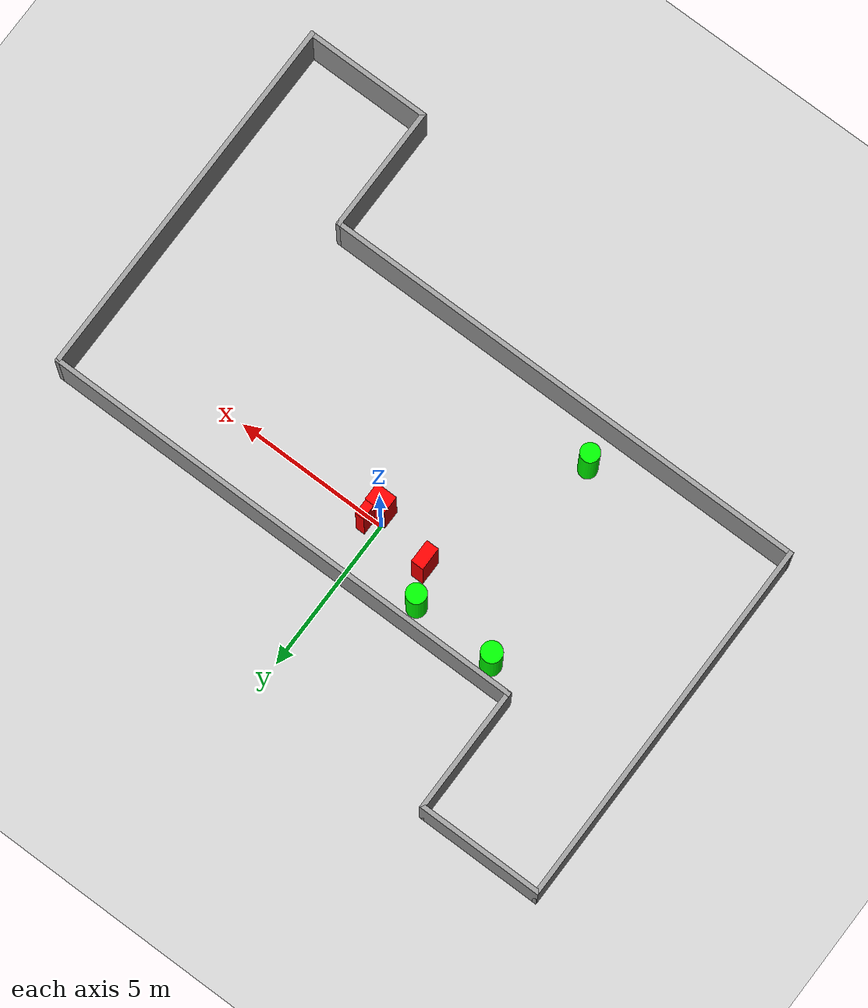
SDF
<sdf version="1.7">
 <world name="default">
  <light name="sun" type="directional">
   <pose>0 0 10 0 -0 0</pose>
   <diffuse>0.8 0.8 0.8 1</diffuse>
   <specular>0.2 0.2 0.2 1</specular>
   <attenuation>
    <range>1000</range>
    <constant>0.9</constant>
    <linear>0.01</linear>
    <quadratic>0.001</quadratic>
   </attenuation>
   <direction>-0.5 0.1 -0.9</direction>
   <spot><inner_angle>0</inner_angle><outer_angle>0</outer_angle><falloff>0</falloff></spot>
  </light>
  <model name="ground_plane">
   <static>1</static>
   <link name="link">
    <collision name="collision">
     <geometry><plane><normal>0 0 1</normal><size>100 100</size></plane></geometry>
     <surface>
      <contact><collide_bitmask>65535</collide_bitmask></contact>
      <friction><ode><mu>100</mu><mu2>50</mu2></ode></friction>
     </surface>
    </collision>
    <visual name="visual">
     <cast_shadows>0</cast_shadows>
     <geometry><plane><normal>0 0 1</normal><size>100 100</size></plane></geometry>
     <material>
      <script><uri>file://media/materials/scripts/gazebo.material</uri><name>Gazebo/Grey</name></script>
     </material>
    </visual>
   </link>
  </model>
  <gravity>0 0 -9.8</gravity>
  <magnetic_field>6e-06 2.3e-05 -4.2e-05</magnetic_field>
  <atmosphere type="adiabatic"/>
  <physics type="ode">
   <max_step_size>0.001</max_step_size>
   <real_time_factor>1</real_time_factor>
   <real_time_update_rate>1000</real_time_update_rate>
  </physics>
  <scene><ambient>0.4 0.4 0.4 1</ambient><background>0.7 0.7 0.7 1</background><shadows>1</shadows></scene>
  <spherical_coordinates>
   <surface_model>EARTH_WGS84</surface_model>
   <latitude_deg>0</latitude_deg>
   <longitude_deg>0</longitude_deg>
   <elevation>0</elevation>
   <heading_deg>0</heading_deg>
  </spherical_coordinates>
  <model name="my_base_walls">
   <link name="Wall_13">
    <collision name="Wall_13_Collision">
     <geometry><box><size>12.15 0.15 2.5</size></box></geometry>
     <pose>0 0 1.25 0 -0 0</pose>
    </collision>
    <visual name="Wall_13_Visual">
     <pose>0 0 1.25 0 -0 0</pose>
     <geometry><box><size>12.15 0.15 2.5</size></box></geometry>
     <material>
      <script><uri>file://media/materials/scripts/gazebo.material</uri><name>Gazebo/Grey</name></script>
      <ambient>1 1 1 1</ambient>
     </material>
     <meta><layer>0</layer></meta>
    </visual>
    <pose>10 -2 0 0 -0 1.5708</pose>
   </link>
   <link name="Wall_15">
    <collision name="Wall_15_Collision">
     <geometry><box><size>16.15 0.15 2.5</size></box></geometry>
     <pose>0 0 1.25 0 -0 0</pose>
    </collision>
    <visual name="Wall_15_Visual">
     <pose>0 0 1.25 0 -0 0</pose>
     <geometry><box><size>16.15 0.15 2.5</size></box></geometry>
     <material>
      <script><uri>file://media/materials/scripts/gazebo.material</uri><name>Gazebo/Grey</name></script>
      <ambient>1 1 1 1</ambient>
     </material>
     <meta><layer>0</layer></meta>
    </visual>
    <pose>2 4 0 0 -0 3.14159</pose>
   </link>
   <link name="Wall_17">
    <collision name="Wall_17_Collision">
     <geometry><box><size>4.15 0.15 2.5</size></box></geometry>
     <pose>0 0 1.25 0 -0 0</pose>
    </collision>
    <visual name="Wall_17_Visual">
     <pose>0 0 1.25 0 -0 0</pose>
     <geometry><box><size>4.15 0.15 2.5</size></box></geometry>
     <material>
      <script><uri>file://media/materials/scripts/gazebo.material</uri><name>Gazebo/Grey</name></script>
      <ambient>1 1 1 1</ambient>
     </material>
     <meta><layer>0</layer></meta>
    </visual>
    <pose>6 -6 0 0 -0 -1.5708</pose>
   </link>
   <link name="Wall_19">
    <collision name="Wall_19_Collision">
     <geometry><box><size>12.15 0.15 2.5</size></box></geometry>
     <pose>0 0 1.25 0 -0 0</pose>
    </collision>
    <visual name="Wall_19_Visual">
     <pose>0 0 1.25 0 -0 0</pose>
     <geometry><box><size>12.15 0.15 2.5</size></box></geometry>
     <material>
      <script><uri>file://media/materials/scripts/gazebo.material</uri><name>Gazebo/Grey</name></script>
      <ambient>1 1 1 1</ambient>
     </material>
     <meta><layer>0</layer></meta>
    </visual>
    <pose>-10 2 0 0 -0 1.5708</pose>
   </link>
   <link name="Wall_21">
    <collision name="Wall_21_Collision">
     <geometry><box><size>4.15 0.15 2.5</size></box></geometry>
     <pose>0 0 1.25 0 -0 0</pose>
    </collision>
    <visual name="Wall_21_Visual">
     <pose>0 0 1.25 0 -0 0</pose>
     <geometry><box><size>4.15 0.15 2.5</size></box></geometry>
     <material>
      <script><uri>file://media/materials/scripts/gazebo.material</uri><name>Gazebo/Grey</name></script>
      <ambient>1 1 1 1</ambient>
     </material>
     <meta><layer>0</layer></meta>
    </visual>
    <pose>-8 8 0 0 -0 0</pose>
   </link>
   <link name="Wall_23">
    <collision name="Wall_23_Collision">
     <geometry><box><size>4.15 0.15 2.5</size></box></geometry>
     <pose>0 0 1.25 0 -0 0</pose>
    </collision>
    <visual name="Wall_23_Visual">
     <pose>0 0 1.25 0 -0 0</pose>
     <geometry><box><size>4.15 0.15 2.5</size></box></geometry>
     <material>
      <script><uri>file://media/materials/scripts/gazebo.material</uri><name>Gazebo/Grey</name></script>
      <ambient>1 1 1 1</ambient>
     </material>
     <meta><layer>0</layer></meta>
    </visual>
    <pose>-6 6 0 0 -0 -1.5708</pose>
   </link>
   <link name="Wall_25">
    <collision name="Wall_25_Collision">
     <geometry><box><size>4.15 0.15 2.5</size></box></geometry>
     <pose>0 0 1.25 0 -0 0</pose>
    </collision>
    <visual name="Wall_25_Visual">
     <pose>0 0 1.25 0 -0 0</pose>
     <geometry><box><size>4.15 0.15 2.5</size></box></geometry>
     <material>
      <script><uri>file://media/materials/scripts/gazebo.material</uri><name>Gazebo/Grey</name></script>
      <ambient>1 1 1 1</ambient>
     </material>
     <meta><layer>0</layer></meta>
    </visual>
    <pose>8 -8 0 0 -0 0</pose>
   </link>
   <link name="Wall_9">
    <collision name="Wall_9_Collision">
     <geometry><box><size>16.15 0.15 2.5</size></box></geometry>
     <pose>0 0 1.25 0 -0 0</pose>
    </collision>
    <visual name="Wall_9_Visual">
     <pose>0 0 1.25 0 -0 0</pose>
     <geometry><box><size>16.15 0.15 2.5</size></box></geometry>
     <material>
      <script><uri>file://media/materials/scripts/gazebo.material</uri><name>Gazebo/Grey</name></script>
      <ambient>1 1 1 1</ambient>
     </material>
     <meta><layer>0</layer></meta>
    </visual>
    <pose>-2 -4 0 0 -0 3.14159</pose>
   </link>
   <static>1</static>
   <pose>-0 -2 0 0 -0 0</pose>
  </model>
  <model name="cylinder1">
   <static>1</static>
   <link name="link">
    <inertial>
     <mass>1</mass>
     <inertia><ixx>0.5</ixx><ixy>0</ixy><ixz>0</ixz><iyy>0.5</iyy><iyz>0</iyz><izz>1</izz></inertia>
    </inertial>
    <collision name="collision">
     <geometry><cylinder><radius>0.33407260646122605</radius><length>2.5</length></cylinder></geometry>
    </collision>
    <visual name="visual">
     <geometry><cylinder><radius>0.33407260646122605</radius><length>2.5</length></cylinder></geometry>
     <material>
      <ambient>0 1 0 1</ambient>
      <diffuse>0 1 0 1</diffuse>
      <specular>0.1 0.1 0.1 1</specular>
      <emissive>0 0 0 0</emissive>
     </material>
    </visual>
   </link>
   <pose>-4.930046043622382 1.3333604862043247 1.25 0 0 0</pose>
  </model>
  <model name="cylinder2">
   <static>1</static>
   <link name="link">
    <inertial>
     <mass>1</mass>
     <inertia><ixx>0.5</ixx><ixy>0</ixy><ixz>0</ixz><iyy>0.5</iyy><iyz>0</iyz><izz>1</izz></inertia>
    </inertial>
    <collision name="collision">
     <geometry><cylinder><radius>0.31940321308686237</radius><length>2.5</length></cylinder></geometry>
    </collision>
    <visual name="visual">
     <geometry><cylinder><radius>0.31940321308686237</radius><length>2.5</length></cylinder></geometry>
     <material>
      <ambient>0 1 0 1</ambient>
      <diffuse>0 1 0 1</diffuse>
      <specular>0.1 0.1 0.1 1</specular>
      <emissive>0 0 0 0</emissive>
     </material>
    </visual>
   </link>
   <pose>-2.2222952516238994 1.2741550571168627 1.25 0 0 0</pose>
  </model>
  <model name="cylinder3">
   <static>1</static>
   <link name="link">
    <inertial>
     <mass>1</mass>
     <inertia><ixx>0.5</ixx><ixy>0</ixy><ixz>0</ixz><iyy>0.5</iyy><iyz>0</iyz><izz>1</izz></inertia>
    </inertial>
    <collision name="collision">
     <geometry><cylinder><radius>0.3035279797475478</radius><length>2.5</length></cylinder></geometry>
    </collision>
    <visual name="visual">
     <geometry><cylinder><radius>0.3035279797475478</radius><length>2.5</length></cylinder></geometry>
     <material>
      <ambient>0 1 0 1</ambient>
      <diffuse>0 1 0 1</diffuse>
      <specular>0.1 0.1 0.1 1</specular>
      <emissive>0 0 0 0</emissive>
     </material>
    </visual>
   </link>
   <pose>-3.7400508793761653 -4.931471580457309 1.25 0 0 0</pose>
  </model>
  <model name="box1">
   <static>1</static>
   <link name="link">
    <inertial>
     <mass>1</mass>
     <inertia><ixx>0.083</ixx><ixy>0</ixy><ixz>0</ixz><iyy>0.083</iyy><iyz>0</iyz><izz>0.083</izz></inertia>
    </inertial>
    <collision name="collision">
     <geometry><box><size>0.41335577382586647 0.7464157038504278 2.5</size></box></geometry>
    </collision>
    <visual name="visual">
     <geometry><box><size>0.41335577382586647 0.7464157038504278 2.5</size></box></geometry>
     <material>
      <ambient>1 0 0 1</ambient>
      <diffuse>1 0 0 1</diffuse>
      <specular>0.1 0.1 0.1 1</specular>
      <emissive>0 0 0 0</emissive>
     </material>
    </visual>
    <sensor name="my_contact" type="contact">
     <contact><collision>box_collision</collision><topic>__default_topic__</topic></contact>
    </sensor>
   </link>
   <pose>-1.750415934834809 0.24410170860566982 1.25 0 0 0</pose>
  </model>
  <model name="box2">
   <static>1</static>
   <link name="link">
    <inertial>
     <mass>1</mass>
     <inertia><ixx>0.083</ixx><ixy>0</ixy><ixz>0</ixz><iyy>0.083</iyy><iyz>0</iyz><izz>0.083</izz></inertia>
    </inertial>
    <collision name="collision">
     <geometry><box><size>0.6880188902450464 0.5782004785830035 2.5</size></box></geometry>
    </collision>
    <visual name="visual">
     <geometry><box><size>0.6880188902450464 0.5782004785830035 2.5</size></box></geometry>
     <material>
      <ambient>1 0 0 1</ambient>
      <diffuse>1 0 0 1</diffuse>
      <specular>0.1 0.1 0.1 1</specular>
      <emissive>0 0 0 0</emissive>
     </material>
    </visual>
    <sensor name="my_contact" type="contact">
     <contact><collision>box_collision</collision><topic>__default_topic__</topic></contact>
    </sensor>
   </link>
   <pose>0.23306098298366074 -0.31259580198072623 1.25 0 0 0</pose>
  </model>
  <model name="box3">
   <static>1</static>
   <link name="link">
    <inertial>
     <mass>1</mass>
     <inertia><ixx>0.083</ixx><ixy>0</ixy><ixz>0</ixz><iyy>0.083</iyy><iyz>0</iyz><izz>0.083</izz></inertia>
    </inertial>
    <collision name="collision">
     <geometry><box><size>0.29571034233679 0.6723160149053592 2.5</size></box></geometry>
    </collision>
    <visual name="visual">
     <geometry><box><size>0.29571034233679 0.6723160149053592 2.5</size></box></geometry>
     <material>
      <ambient>1 0 0 1</ambient>
      <diffuse>1 0 0 1</diffuse>
      <specular>0.1 0.1 0.1 1</specular>
      <emissive>0 0 0 0</emissive>
     </material>
    </visual>
    <sensor name="my_contact" type="contact">
     <contact><collision>box_collision</collision><topic>__default_topic__</topic></contact>
    </sensor>
   </link>
   <pose>0.4035397937323104 0.13082337439170644 1.25 0 0 0</pose>
  </model>
 </world>
</sdf>
